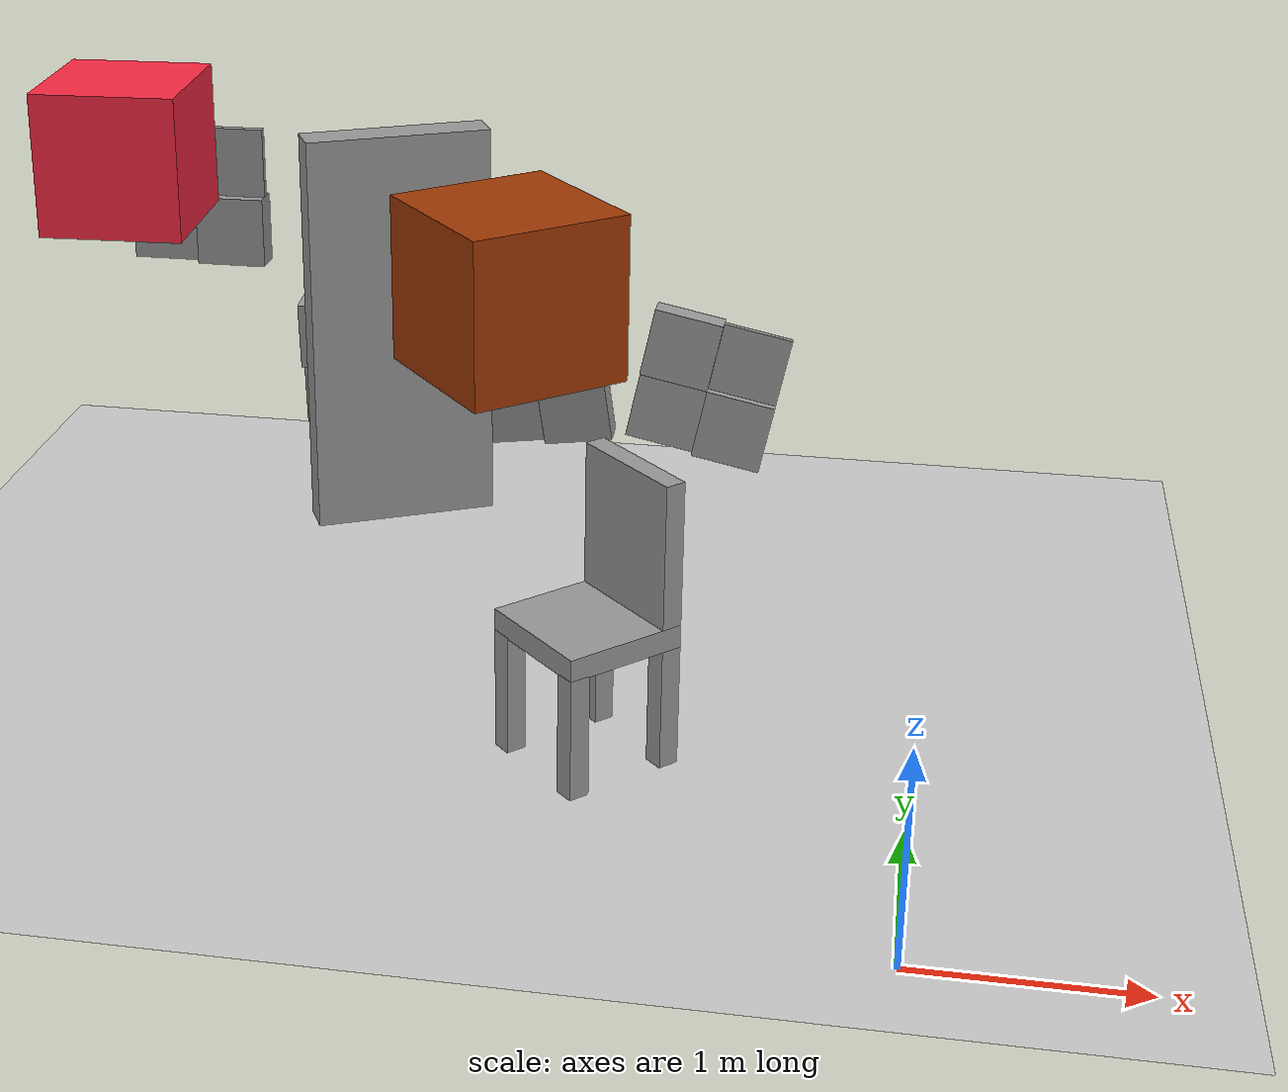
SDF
<sdf version="1.7">
 <world name="default">
  <model name="dyn_box">
   <pose>-4.46961 4.02531 2 0 0 -1.5217</pose>
   <static>1</static>
   <allow_auto_disable>0</allow_auto_disable>
   <link name="link">
    <collision name="collision">
     <geometry><box><size>0.8 0.8 0.8</size></box></geometry>
     <max_contacts>20</max_contacts>
    </collision>
    <visual name="visual">
     <geometry><box><size>0.8 0.8 0.8</size></box></geometry>
     <material>
      <ambient>0.984314 0.160784 0.262745 1</ambient>
      <diffuse>0.984314 0.160784 0.262745 1</diffuse>
     </material>
    </visual>
   </link>
  </model>
  <model name="dyn_box_6">
   <pose>-1.95271 2.10786 2 0 -0 2.26778</pose>
   <static>1</static>
   <allow_auto_disable>0</allow_auto_disable>
   <link name="link">
    <collision name="collision">
     <geometry><box><size>0.8 0.8 0.8</size></box></geometry>
     <max_contacts>20</max_contacts>
    </collision>
    <visual name="visual">
     <geometry><box><size>0.8 0.8 0.8</size></box></geometry>
     <material>
      <ambient>0.631373 0.223529 0.0196078 1</ambient>
      <diffuse>0.631373 0.223529 0.0196078 1</diffuse>
     </material>
    </visual>
   </link>
  </model>
  <model name="ground_plane">
   <static>1</static>
   <link name="link">
    <collision name="collision">
     <geometry><plane><normal>0 0 1</normal><size>100 100</size></plane></geometry>
     <surface>
      <contact><collide_bitmask>65535</collide_bitmask></contact>
      <friction><ode><mu>100</mu><mu2>50</mu2></ode></friction>
     </surface>
    </collision>
    <visual name="visual">
     <cast_shadows>0</cast_shadows>
     <geometry><plane><normal>0 0 1</normal><size>100 100</size></plane></geometry>
     <material>
      <script><uri>file://media/materials/scripts/gazebo.material</uri><name>Gazebo/Grey</name></script>
     </material>
    </visual>
   </link>
  </model>
  <model name="wall_slate_12">
   <static>1</static>
   <link name="link_0">
    <inertial><mass>1</mass></inertial>
    <gravity>0</gravity>
    <visual name="visual">
     <pose>0 0.2 0.2 0 -0 0</pose>
     <geometry><box><size>0.16 0.4 0.4</size></box></geometry>
     <material>
      <lighting>1</lighting>
      <script><uri>file://media/materials/scripts/gazebo.material</uri><name>Gazebo/Grey</name></script>
      <shader type="pixel"><normal_map>__default__</normal_map></shader>
      <ambient>0.3 0.3 0.3 1</ambient>
      <diffuse>0.7 0.7 0.7 1</diffuse>
      <specular>0.01 0.01 0.01 1</specular>
      <emissive>0 0 0 1</emissive>
     </material>
    </visual>
    <visual name="ModelPreview_0::link_0::visual_1">
     <pose>0 0.2 -0.2 0 -0 0</pose>
     <geometry><box><size>0.04 0.4 0.4</size></box></geometry>
     <material>
      <lighting>1</lighting>
      <script><uri>file://media/materials/scripts/gazebo.material</uri><name>Gazebo/Grey</name></script>
      <shader type="pixel"><normal_map>__default__</normal_map></shader>
      <ambient>0.3 0.3 0.3 1</ambient>
      <diffuse>0.7 0.7 0.7 1</diffuse>
      <specular>0.01 0.01 0.01 1</specular>
      <emissive>0 0 0 1</emissive>
     </material>
    </visual>
    <visual name="ModelPreview_0::link_0::visual_2">
     <pose>0 -0.2 0.2 0 -0 0</pose>
     <geometry><box><size>0.04 0.4 0.4</size></box></geometry>
     <material>
      <lighting>1</lighting>
      <script><uri>file://media/materials/scripts/gazebo.material</uri><name>Gazebo/Grey</name></script>
      <shader type="pixel"><normal_map>__default__</normal_map></shader>
      <ambient>0.3 0.3 0.3 1</ambient>
      <diffuse>0.7 0.7 0.7 1</diffuse>
      <specular>0.01 0.01 0.01 1</specular>
      <emissive>0 0 0 1</emissive>
     </material>
    </visual>
    <visual name="ModelPreview_0::link_0::visual_3">
     <pose>0 -0.2 -0.2 0 -0 0</pose>
     <geometry><box><size>0.16 0.4 0.4</size></box></geometry>
     <material>
      <lighting>1</lighting>
      <script><uri>file://media/materials/scripts/gazebo.material</uri><name>Gazebo/Grey</name></script>
      <shader type="pixel"><normal_map>__default__</normal_map></shader>
      <ambient>0.3 0.3 0.3 1</ambient>
      <diffuse>0.7 0.7 0.7 1</diffuse>
      <specular>0.01 0.01 0.01 1</specular>
      <emissive>0 0 0 1</emissive>
     </material>
    </visual>
    <collision name="collision_2">
     <pose>0 -0.2 0.2 0 -0 0</pose>
     <geometry><box><size>0.04 0.4 0.4</size></box></geometry>
     <surface>
      <friction>
       <ode><mu>1</mu><mu2>1</mu2><fdir1>0 0 0</fdir1><slip1>0</slip1><slip2>0</slip2></ode>
       <torsional>
        <coefficient>1</coefficient>
        <patch_radius>0</patch_radius>
        <surface_radius>0</surface_radius>
        <use_patch_radius>1</use_patch_radius>
        <ode><slip>0</slip></ode>
       </torsional>
      </friction>
      <bounce><restitution_coefficient>0</restitution_coefficient><threshold>1e+06</threshold></bounce>
      <contact>
       <collide_without_contact>0</collide_without_contact>
       <collide_without_contact_bitmask>1</collide_without_contact_bitmask>
       <collide_bitmask>1</collide_bitmask>
       <ode>
        <soft_cfm>0</soft_cfm>
        <soft_erp>0.2</soft_erp>
        <kp>1e+13</kp>
        <kd>1</kd>
        <max_vel>0.01</max_vel>
        <min_depth>0</min_depth>
       </ode>
       <bullet>
        <split_impulse>1</split_impulse>
        <split_impulse_penetration_threshold>-0.01</split_impulse_penetration_threshold>
        <soft_cfm>0</soft_cfm>
        <soft_erp>0.2</soft_erp>
        <kp>1e+13</kp>
        <kd>1</kd>
       </bullet>
      </contact>
     </surface>
    </collision>
    <collision name="collision_1">
     <pose>0 0.2 -0.2 0 -0 0</pose>
     <geometry><box><size>0.04 0.4 0.4</size></box></geometry>
     <surface>
      <friction>
       <ode><mu>1</mu><mu2>1</mu2><fdir1>0 0 0</fdir1><slip1>0</slip1><slip2>0</slip2></ode>
       <torsional>
        <coefficient>1</coefficient>
        <patch_radius>0</patch_radius>
        <surface_radius>0</surface_radius>
        <use_patch_radius>1</use_patch_radius>
        <ode><slip>0</slip></ode>
       </torsional>
      </friction>
      <bounce><restitution_coefficient>0</restitution_coefficient><threshold>1e+06</threshold></bounce>
      <contact>
       <collide_without_contact>0</collide_without_contact>
       <collide_without_contact_bitmask>1</collide_without_contact_bitmask>
       <collide_bitmask>1</collide_bitmask>
       <ode>
        <soft_cfm>0</soft_cfm>
        <soft_erp>0.2</soft_erp>
        <kp>1e+13</kp>
        <kd>1</kd>
        <max_vel>0.01</max_vel>
        <min_depth>0</min_depth>
       </ode>
       <bullet>
        <split_impulse>1</split_impulse>
        <split_impulse_penetration_threshold>-0.01</split_impulse_penetration_threshold>
        <soft_cfm>0</soft_cfm>
        <soft_erp>0.2</soft_erp>
        <kp>1e+13</kp>
        <kd>1</kd>
       </bullet>
      </contact>
     </surface>
    </collision>
    <collision name="collision_4">
     <pose>0 0.2 0.2 0 -0 0</pose>
     <geometry><box><size>0.16 0.4 0.4</size></box></geometry>
     <surface>
      <friction>
       <ode><mu>1</mu><mu2>1</mu2><fdir1>0 0 0</fdir1><slip1>0</slip1><slip2>0</slip2></ode>
       <torsional>
        <coefficient>1</coefficient>
        <patch_radius>0</patch_radius>
        <surface_radius>0</surface_radius>
        <use_patch_radius>1</use_patch_radius>
        <ode><slip>0</slip></ode>
       </torsional>
      </friction>
      <bounce><restitution_coefficient>0</restitution_coefficient><threshold>1e+06</threshold></bounce>
      <contact>
       <collide_without_contact>0</collide_without_contact>
       <collide_without_contact_bitmask>1</collide_without_contact_bitmask>
       <collide_bitmask>1</collide_bitmask>
       <ode>
        <soft_cfm>0</soft_cfm>
        <soft_erp>0.2</soft_erp>
        <kp>1e+13</kp>
        <kd>1</kd>
        <max_vel>0.01</max_vel>
        <min_depth>0</min_depth>
       </ode>
       <bullet>
        <split_impulse>1</split_impulse>
        <split_impulse_penetration_threshold>-0.01</split_impulse_penetration_threshold>
        <soft_cfm>0</soft_cfm>
        <soft_erp>0.2</soft_erp>
        <kp>1e+13</kp>
        <kd>1</kd>
       </bullet>
      </contact>
     </surface>
    </collision>
    <collision name="collision_3">
     <pose>0 -0.2 -0.2 0 -0 0</pose>
     <geometry><box><size>0.16 0.4 0.4</size></box></geometry>
     <surface>
      <friction>
       <ode><mu>1</mu><mu2>1</mu2><fdir1>0 0 0</fdir1><slip1>0</slip1><slip2>0</slip2></ode>
       <torsional>
        <coefficient>1</coefficient>
        <patch_radius>0</patch_radius>
        <surface_radius>0</surface_radius>
        <use_patch_radius>1</use_patch_radius>
        <ode><slip>0</slip></ode>
       </torsional>
      </friction>
      <bounce><restitution_coefficient>0</restitution_coefficient><threshold>1e+06</threshold></bounce>
      <contact>
       <collide_without_contact>0</collide_without_contact>
       <collide_without_contact_bitmask>1</collide_without_contact_bitmask>
       <collide_bitmask>1</collide_bitmask>
       <ode>
        <soft_cfm>0</soft_cfm>
        <soft_erp>0.2</soft_erp>
        <kp>1e+13</kp>
        <kd>1</kd>
        <max_vel>0.01</max_vel>
        <min_depth>0</min_depth>
       </ode>
       <bullet>
        <split_impulse>1</split_impulse>
        <split_impulse_penetration_threshold>-0.01</split_impulse_penetration_threshold>
        <soft_cfm>0</soft_cfm>
        <soft_erp>0.2</soft_erp>
        <kp>1e+13</kp>
        <kd>1</kd>
       </bullet>
      </contact>
     </surface>
    </collision>
   </link>
   <pose>-4.24649 4.56618 1.6 0 -0 1.5757</pose>
  </model>
  <model name="wall_slate_58">
   <static>1</static>
   <link name="link_0">
    <inertial><mass>1</mass></inertial>
    <gravity>0</gravity>
    <visual name="visual">
     <pose>0 0.2 0.2 0 -0 0</pose>
     <geometry><box><size>0.16 0.4 0.4</size></box></geometry>
     <material>
      <lighting>1</lighting>
      <script><uri>file://media/materials/scripts/gazebo.material</uri><name>Gazebo/Grey</name></script>
      <shader type="pixel"><normal_map>__default__</normal_map></shader>
      <ambient>0.3 0.3 0.3 1</ambient>
      <diffuse>0.7 0.7 0.7 1</diffuse>
      <specular>0.01 0.01 0.01 1</specular>
      <emissive>0 0 0 1</emissive>
     </material>
    </visual>
    <visual name="ModelPreview_0::link_0::visual_1">
     <pose>0 0.2 -0.2 0 -0 0</pose>
     <geometry><box><size>0.04 0.4 0.4</size></box></geometry>
     <material>
      <lighting>1</lighting>
      <script><uri>file://media/materials/scripts/gazebo.material</uri><name>Gazebo/Grey</name></script>
      <shader type="pixel"><normal_map>__default__</normal_map></shader>
      <ambient>0.3 0.3 0.3 1</ambient>
      <diffuse>0.7 0.7 0.7 1</diffuse>
      <specular>0.01 0.01 0.01 1</specular>
      <emissive>0 0 0 1</emissive>
     </material>
    </visual>
    <visual name="ModelPreview_0::link_0::visual_2">
     <pose>0 -0.2 0.2 0 -0 0</pose>
     <geometry><box><size>0.04 0.4 0.4</size></box></geometry>
     <material>
      <lighting>1</lighting>
      <script><uri>file://media/materials/scripts/gazebo.material</uri><name>Gazebo/Grey</name></script>
      <shader type="pixel"><normal_map>__default__</normal_map></shader>
      <ambient>0.3 0.3 0.3 1</ambient>
      <diffuse>0.7 0.7 0.7 1</diffuse>
      <specular>0.01 0.01 0.01 1</specular>
      <emissive>0 0 0 1</emissive>
     </material>
    </visual>
    <visual name="ModelPreview_0::link_0::visual_3">
     <pose>0 -0.2 -0.2 0 -0 0</pose>
     <geometry><box><size>0.16 0.4 0.4</size></box></geometry>
     <material>
      <lighting>1</lighting>
      <script><uri>file://media/materials/scripts/gazebo.material</uri><name>Gazebo/Grey</name></script>
      <shader type="pixel"><normal_map>__default__</normal_map></shader>
      <ambient>0.3 0.3 0.3 1</ambient>
      <diffuse>0.7 0.7 0.7 1</diffuse>
      <specular>0.01 0.01 0.01 1</specular>
      <emissive>0 0 0 1</emissive>
     </material>
    </visual>
    <collision name="collision_2">
     <pose>0 -0.2 0.2 0 -0 0</pose>
     <geometry><box><size>0.04 0.4 0.4</size></box></geometry>
     <surface>
      <friction>
       <ode><mu>1</mu><mu2>1</mu2><fdir1>0 0 0</fdir1><slip1>0</slip1><slip2>0</slip2></ode>
       <torsional>
        <coefficient>1</coefficient>
        <patch_radius>0</patch_radius>
        <surface_radius>0</surface_radius>
        <use_patch_radius>1</use_patch_radius>
        <ode><slip>0</slip></ode>
       </torsional>
      </friction>
      <bounce><restitution_coefficient>0</restitution_coefficient><threshold>1e+06</threshold></bounce>
      <contact>
       <collide_without_contact>0</collide_without_contact>
       <collide_without_contact_bitmask>1</collide_without_contact_bitmask>
       <collide_bitmask>1</collide_bitmask>
       <ode>
        <soft_cfm>0</soft_cfm>
        <soft_erp>0.2</soft_erp>
        <kp>1e+13</kp>
        <kd>1</kd>
        <max_vel>0.01</max_vel>
        <min_depth>0</min_depth>
       </ode>
       <bullet>
        <split_impulse>1</split_impulse>
        <split_impulse_penetration_threshold>-0.01</split_impulse_penetration_threshold>
        <soft_cfm>0</soft_cfm>
        <soft_erp>0.2</soft_erp>
        <kp>1e+13</kp>
        <kd>1</kd>
       </bullet>
      </contact>
     </surface>
    </collision>
    <collision name="collision_1">
     <pose>0 0.2 -0.2 0 -0 0</pose>
     <geometry><box><size>0.04 0.4 0.4</size></box></geometry>
     <surface>
      <friction>
       <ode><mu>1</mu><mu2>1</mu2><fdir1>0 0 0</fdir1><slip1>0</slip1><slip2>0</slip2></ode>
       <torsional>
        <coefficient>1</coefficient>
        <patch_radius>0</patch_radius>
        <surface_radius>0</surface_radius>
        <use_patch_radius>1</use_patch_radius>
        <ode><slip>0</slip></ode>
       </torsional>
      </friction>
      <bounce><restitution_coefficient>0</restitution_coefficient><threshold>1e+06</threshold></bounce>
      <contact>
       <collide_without_contact>0</collide_without_contact>
       <collide_without_contact_bitmask>1</collide_without_contact_bitmask>
       <collide_bitmask>1</collide_bitmask>
       <ode>
        <soft_cfm>0</soft_cfm>
        <soft_erp>0.2</soft_erp>
        <kp>1e+13</kp>
        <kd>1</kd>
        <max_vel>0.01</max_vel>
        <min_depth>0</min_depth>
       </ode>
       <bullet>
        <split_impulse>1</split_impulse>
        <split_impulse_penetration_threshold>-0.01</split_impulse_penetration_threshold>
        <soft_cfm>0</soft_cfm>
        <soft_erp>0.2</soft_erp>
        <kp>1e+13</kp>
        <kd>1</kd>
       </bullet>
      </contact>
     </surface>
    </collision>
    <collision name="collision_4">
     <pose>0 0.2 0.2 0 -0 0</pose>
     <geometry><box><size>0.16 0.4 0.4</size></box></geometry>
     <surface>
      <friction>
       <ode><mu>1</mu><mu2>1</mu2><fdir1>0 0 0</fdir1><slip1>0</slip1><slip2>0</slip2></ode>
       <torsional>
        <coefficient>1</coefficient>
        <patch_radius>0</patch_radius>
        <surface_radius>0</surface_radius>
        <use_patch_radius>1</use_patch_radius>
        <ode><slip>0</slip></ode>
       </torsional>
      </friction>
      <bounce><restitution_coefficient>0</restitution_coefficient><threshold>1e+06</threshold></bounce>
      <contact>
       <collide_without_contact>0</collide_without_contact>
       <collide_without_contact_bitmask>1</collide_without_contact_bitmask>
       <collide_bitmask>1</collide_bitmask>
       <ode>
        <soft_cfm>0</soft_cfm>
        <soft_erp>0.2</soft_erp>
        <kp>1e+13</kp>
        <kd>1</kd>
        <max_vel>0.01</max_vel>
        <min_depth>0</min_depth>
       </ode>
       <bullet>
        <split_impulse>1</split_impulse>
        <split_impulse_penetration_threshold>-0.01</split_impulse_penetration_threshold>
        <soft_cfm>0</soft_cfm>
        <soft_erp>0.2</soft_erp>
        <kp>1e+13</kp>
        <kd>1</kd>
       </bullet>
      </contact>
     </surface>
    </collision>
    <collision name="collision_3">
     <pose>0 -0.2 -0.2 0 -0 0</pose>
     <geometry><box><size>0.16 0.4 0.4</size></box></geometry>
     <surface>
      <friction>
       <ode><mu>1</mu><mu2>1</mu2><fdir1>0 0 0</fdir1><slip1>0</slip1><slip2>0</slip2></ode>
       <torsional>
        <coefficient>1</coefficient>
        <patch_radius>0</patch_radius>
        <surface_radius>0</surface_radius>
        <use_patch_radius>1</use_patch_radius>
        <ode><slip>0</slip></ode>
       </torsional>
      </friction>
      <bounce><restitution_coefficient>0</restitution_coefficient><threshold>1e+06</threshold></bounce>
      <contact>
       <collide_without_contact>0</collide_without_contact>
       <collide_without_contact_bitmask>1</collide_without_contact_bitmask>
       <collide_bitmask>1</collide_bitmask>
       <ode>
        <soft_cfm>0</soft_cfm>
        <soft_erp>0.2</soft_erp>
        <kp>1e+13</kp>
        <kd>1</kd>
        <max_vel>0.01</max_vel>
        <min_depth>0</min_depth>
       </ode>
       <bullet>
        <split_impulse>1</split_impulse>
        <split_impulse_penetration_threshold>-0.01</split_impulse_penetration_threshold>
        <soft_cfm>0</soft_cfm>
        <soft_erp>0.2</soft_erp>
        <kp>1e+13</kp>
        <kd>1</kd>
       </bullet>
      </contact>
     </surface>
    </collision>
   </link>
   <pose>-3.24649 4.56618 0.6 -0 -0.1 1.5757</pose>
  </model>
  <model name="wall_slate_60">
   <static>1</static>
   <link name="link_0">
    <inertial><mass>1</mass></inertial>
    <gravity>0</gravity>
    <visual name="visual">
     <pose>0 0.2 0.2 0 -0 0</pose>
     <geometry><box><size>0.16 0.4 0.4</size></box></geometry>
     <material>
      <lighting>1</lighting>
      <script><uri>file://media/materials/scripts/gazebo.material</uri><name>Gazebo/Grey</name></script>
      <shader type="pixel"><normal_map>__default__</normal_map></shader>
      <ambient>0.3 0.3 0.3 1</ambient>
      <diffuse>0.7 0.7 0.7 1</diffuse>
      <specular>0.01 0.01 0.01 1</specular>
      <emissive>0 0 0 1</emissive>
     </material>
    </visual>
    <visual name="ModelPreview_0::link_0::visual_1">
     <pose>0 0.2 -0.2 0 -0 0</pose>
     <geometry><box><size>0.04 0.4 0.4</size></box></geometry>
     <material>
      <lighting>1</lighting>
      <script><uri>file://media/materials/scripts/gazebo.material</uri><name>Gazebo/Grey</name></script>
      <shader type="pixel"><normal_map>__default__</normal_map></shader>
      <ambient>0.3 0.3 0.3 1</ambient>
      <diffuse>0.7 0.7 0.7 1</diffuse>
      <specular>0.01 0.01 0.01 1</specular>
      <emissive>0 0 0 1</emissive>
     </material>
    </visual>
    <visual name="ModelPreview_0::link_0::visual_2">
     <pose>0 -0.2 0.2 0 -0 0</pose>
     <geometry><box><size>0.04 0.4 0.4</size></box></geometry>
     <material>
      <lighting>1</lighting>
      <script><uri>file://media/materials/scripts/gazebo.material</uri><name>Gazebo/Grey</name></script>
      <shader type="pixel"><normal_map>__default__</normal_map></shader>
      <ambient>0.3 0.3 0.3 1</ambient>
      <diffuse>0.7 0.7 0.7 1</diffuse>
      <specular>0.01 0.01 0.01 1</specular>
      <emissive>0 0 0 1</emissive>
     </material>
    </visual>
    <visual name="ModelPreview_0::link_0::visual_3">
     <pose>0 -0.2 -0.2 0 -0 0</pose>
     <geometry><box><size>0.16 0.4 0.4</size></box></geometry>
     <material>
      <lighting>1</lighting>
      <script><uri>file://media/materials/scripts/gazebo.material</uri><name>Gazebo/Grey</name></script>
      <shader type="pixel"><normal_map>__default__</normal_map></shader>
      <ambient>0.3 0.3 0.3 1</ambient>
      <diffuse>0.7 0.7 0.7 1</diffuse>
      <specular>0.01 0.01 0.01 1</specular>
      <emissive>0 0 0 1</emissive>
     </material>
    </visual>
    <collision name="collision_2">
     <pose>0 -0.2 0.2 0 -0 0</pose>
     <geometry><box><size>0.04 0.4 0.4</size></box></geometry>
     <surface>
      <friction>
       <ode><mu>1</mu><mu2>1</mu2><fdir1>0 0 0</fdir1><slip1>0</slip1><slip2>0</slip2></ode>
       <torsional>
        <coefficient>1</coefficient>
        <patch_radius>0</patch_radius>
        <surface_radius>0</surface_radius>
        <use_patch_radius>1</use_patch_radius>
        <ode><slip>0</slip></ode>
       </torsional>
      </friction>
      <bounce><restitution_coefficient>0</restitution_coefficient><threshold>1e+06</threshold></bounce>
      <contact>
       <collide_without_contact>0</collide_without_contact>
       <collide_without_contact_bitmask>1</collide_without_contact_bitmask>
       <collide_bitmask>1</collide_bitmask>
       <ode>
        <soft_cfm>0</soft_cfm>
        <soft_erp>0.2</soft_erp>
        <kp>1e+13</kp>
        <kd>1</kd>
        <max_vel>0.01</max_vel>
        <min_depth>0</min_depth>
       </ode>
       <bullet>
        <split_impulse>1</split_impulse>
        <split_impulse_penetration_threshold>-0.01</split_impulse_penetration_threshold>
        <soft_cfm>0</soft_cfm>
        <soft_erp>0.2</soft_erp>
        <kp>1e+13</kp>
        <kd>1</kd>
       </bullet>
      </contact>
     </surface>
    </collision>
    <collision name="collision_1">
     <pose>0 0.2 -0.2 0 -0 0</pose>
     <geometry><box><size>0.04 0.4 0.4</size></box></geometry>
     <surface>
      <friction>
       <ode><mu>1</mu><mu2>1</mu2><fdir1>0 0 0</fdir1><slip1>0</slip1><slip2>0</slip2></ode>
       <torsional>
        <coefficient>1</coefficient>
        <patch_radius>0</patch_radius>
        <surface_radius>0</surface_radius>
        <use_patch_radius>1</use_patch_radius>
        <ode><slip>0</slip></ode>
       </torsional>
      </friction>
      <bounce><restitution_coefficient>0</restitution_coefficient><threshold>1e+06</threshold></bounce>
      <contact>
       <collide_without_contact>0</collide_without_contact>
       <collide_without_contact_bitmask>1</collide_without_contact_bitmask>
       <collide_bitmask>1</collide_bitmask>
       <ode>
        <soft_cfm>0</soft_cfm>
        <soft_erp>0.2</soft_erp>
        <kp>1e+13</kp>
        <kd>1</kd>
        <max_vel>0.01</max_vel>
        <min_depth>0</min_depth>
       </ode>
       <bullet>
        <split_impulse>1</split_impulse>
        <split_impulse_penetration_threshold>-0.01</split_impulse_penetration_threshold>
        <soft_cfm>0</soft_cfm>
        <soft_erp>0.2</soft_erp>
        <kp>1e+13</kp>
        <kd>1</kd>
       </bullet>
      </contact>
     </surface>
    </collision>
    <collision name="collision_4">
     <pose>0 0.2 0.2 0 -0 0</pose>
     <geometry><box><size>0.16 0.4 0.4</size></box></geometry>
     <surface>
      <friction>
       <ode><mu>1</mu><mu2>1</mu2><fdir1>0 0 0</fdir1><slip1>0</slip1><slip2>0</slip2></ode>
       <torsional>
        <coefficient>1</coefficient>
        <patch_radius>0</patch_radius>
        <surface_radius>0</surface_radius>
        <use_patch_radius>1</use_patch_radius>
        <ode><slip>0</slip></ode>
       </torsional>
      </friction>
      <bounce><restitution_coefficient>0</restitution_coefficient><threshold>1e+06</threshold></bounce>
      <contact>
       <collide_without_contact>0</collide_without_contact>
       <collide_without_contact_bitmask>1</collide_without_contact_bitmask>
       <collide_bitmask>1</collide_bitmask>
       <ode>
        <soft_cfm>0</soft_cfm>
        <soft_erp>0.2</soft_erp>
        <kp>1e+13</kp>
        <kd>1</kd>
        <max_vel>0.01</max_vel>
        <min_depth>0</min_depth>
       </ode>
       <bullet>
        <split_impulse>1</split_impulse>
        <split_impulse_penetration_threshold>-0.01</split_impulse_penetration_threshold>
        <soft_cfm>0</soft_cfm>
        <soft_erp>0.2</soft_erp>
        <kp>1e+13</kp>
        <kd>1</kd>
       </bullet>
      </contact>
     </surface>
    </collision>
    <collision name="collision_3">
     <pose>0 -0.2 -0.2 0 -0 0</pose>
     <geometry><box><size>0.16 0.4 0.4</size></box></geometry>
     <surface>
      <friction>
       <ode><mu>1</mu><mu2>1</mu2><fdir1>0 0 0</fdir1><slip1>0</slip1><slip2>0</slip2></ode>
       <torsional>
        <coefficient>1</coefficient>
        <patch_radius>0</patch_radius>
        <surface_radius>0</surface_radius>
        <use_patch_radius>1</use_patch_radius>
        <ode><slip>0</slip></ode>
       </torsional>
      </friction>
      <bounce><restitution_coefficient>0</restitution_coefficient><threshold>1e+06</threshold></bounce>
      <contact>
       <collide_without_contact>0</collide_without_contact>
       <collide_without_contact_bitmask>1</collide_without_contact_bitmask>
       <collide_bitmask>1</collide_bitmask>
       <ode>
        <soft_cfm>0</soft_cfm>
        <soft_erp>0.2</soft_erp>
        <kp>1e+13</kp>
        <kd>1</kd>
        <max_vel>0.01</max_vel>
        <min_depth>0</min_depth>
       </ode>
       <bullet>
        <split_impulse>1</split_impulse>
        <split_impulse_penetration_threshold>-0.01</split_impulse_penetration_threshold>
        <soft_cfm>0</soft_cfm>
        <soft_erp>0.2</soft_erp>
        <kp>1e+13</kp>
        <kd>1</kd>
       </bullet>
      </contact>
     </surface>
    </collision>
   </link>
   <pose>-2.24649 4.56618 0.6 -0.14 -0.06 1.5757</pose>
  </model>
  <model name="wall_slate_82">
   <static>1</static>
   <link name="link_0">
    <inertial><mass>1</mass></inertial>
    <gravity>0</gravity>
    <visual name="visual">
     <pose>0 0.2 0.2 0 -0 0</pose>
     <geometry><box><size>0.16 0.4 0.4</size></box></geometry>
     <material>
      <lighting>1</lighting>
      <script><uri>file://media/materials/scripts/gazebo.material</uri><name>Gazebo/Grey</name></script>
      <shader type="pixel"><normal_map>__default__</normal_map></shader>
      <ambient>0.3 0.3 0.3 1</ambient>
      <diffuse>0.7 0.7 0.7 1</diffuse>
      <specular>0.01 0.01 0.01 1</specular>
      <emissive>0 0 0 1</emissive>
     </material>
    </visual>
    <visual name="ModelPreview_0::link_0::visual_1">
     <pose>0 0.2 -0.2 0 -0 0</pose>
     <geometry><box><size>0.04 0.4 0.4</size></box></geometry>
     <material>
      <lighting>1</lighting>
      <script><uri>file://media/materials/scripts/gazebo.material</uri><name>Gazebo/Grey</name></script>
      <shader type="pixel"><normal_map>__default__</normal_map></shader>
      <ambient>0.3 0.3 0.3 1</ambient>
      <diffuse>0.7 0.7 0.7 1</diffuse>
      <specular>0.01 0.01 0.01 1</specular>
      <emissive>0 0 0 1</emissive>
     </material>
    </visual>
    <visual name="ModelPreview_0::link_0::visual_2">
     <pose>0 -0.2 0.2 0 -0 0</pose>
     <geometry><box><size>0.04 0.4 0.4</size></box></geometry>
     <material>
      <lighting>1</lighting>
      <script><uri>file://media/materials/scripts/gazebo.material</uri><name>Gazebo/Grey</name></script>
      <shader type="pixel"><normal_map>__default__</normal_map></shader>
      <ambient>0.3 0.3 0.3 1</ambient>
      <diffuse>0.7 0.7 0.7 1</diffuse>
      <specular>0.01 0.01 0.01 1</specular>
      <emissive>0 0 0 1</emissive>
     </material>
    </visual>
    <visual name="ModelPreview_0::link_0::visual_3">
     <pose>0 -0.2 -0.2 0 -0 0</pose>
     <geometry><box><size>0.16 0.4 0.4</size></box></geometry>
     <material>
      <lighting>1</lighting>
      <script><uri>file://media/materials/scripts/gazebo.material</uri><name>Gazebo/Grey</name></script>
      <shader type="pixel"><normal_map>__default__</normal_map></shader>
      <ambient>0.3 0.3 0.3 1</ambient>
      <diffuse>0.7 0.7 0.7 1</diffuse>
      <specular>0.01 0.01 0.01 1</specular>
      <emissive>0 0 0 1</emissive>
     </material>
    </visual>
    <collision name="collision_2">
     <pose>0 -0.2 0.2 0 -0 0</pose>
     <geometry><box><size>0.04 0.4 0.4</size></box></geometry>
     <surface>
      <friction>
       <ode><mu>1</mu><mu2>1</mu2><fdir1>0 0 0</fdir1><slip1>0</slip1><slip2>0</slip2></ode>
       <torsional>
        <coefficient>1</coefficient>
        <patch_radius>0</patch_radius>
        <surface_radius>0</surface_radius>
        <use_patch_radius>1</use_patch_radius>
        <ode><slip>0</slip></ode>
       </torsional>
      </friction>
      <bounce><restitution_coefficient>0</restitution_coefficient><threshold>1e+06</threshold></bounce>
      <contact>
       <collide_without_contact>0</collide_without_contact>
       <collide_without_contact_bitmask>1</collide_without_contact_bitmask>
       <collide_bitmask>1</collide_bitmask>
       <ode>
        <soft_cfm>0</soft_cfm>
        <soft_erp>0.2</soft_erp>
        <kp>1e+13</kp>
        <kd>1</kd>
        <max_vel>0.01</max_vel>
        <min_depth>0</min_depth>
       </ode>
       <bullet>
        <split_impulse>1</split_impulse>
        <split_impulse_penetration_threshold>-0.01</split_impulse_penetration_threshold>
        <soft_cfm>0</soft_cfm>
        <soft_erp>0.2</soft_erp>
        <kp>1e+13</kp>
        <kd>1</kd>
       </bullet>
      </contact>
     </surface>
    </collision>
    <collision name="collision_1">
     <pose>0 0.2 -0.2 0 -0 0</pose>
     <geometry><box><size>0.04 0.4 0.4</size></box></geometry>
     <surface>
      <friction>
       <ode><mu>1</mu><mu2>1</mu2><fdir1>0 0 0</fdir1><slip1>0</slip1><slip2>0</slip2></ode>
       <torsional>
        <coefficient>1</coefficient>
        <patch_radius>0</patch_radius>
        <surface_radius>0</surface_radius>
        <use_patch_radius>1</use_patch_radius>
        <ode><slip>0</slip></ode>
       </torsional>
      </friction>
      <bounce><restitution_coefficient>0</restitution_coefficient><threshold>1e+06</threshold></bounce>
      <contact>
       <collide_without_contact>0</collide_without_contact>
       <collide_without_contact_bitmask>1</collide_without_contact_bitmask>
       <collide_bitmask>1</collide_bitmask>
       <ode>
        <soft_cfm>0</soft_cfm>
        <soft_erp>0.2</soft_erp>
        <kp>1e+13</kp>
        <kd>1</kd>
        <max_vel>0.01</max_vel>
        <min_depth>0</min_depth>
       </ode>
       <bullet>
        <split_impulse>1</split_impulse>
        <split_impulse_penetration_threshold>-0.01</split_impulse_penetration_threshold>
        <soft_cfm>0</soft_cfm>
        <soft_erp>0.2</soft_erp>
        <kp>1e+13</kp>
        <kd>1</kd>
       </bullet>
      </contact>
     </surface>
    </collision>
    <collision name="collision_4">
     <pose>0 0.2 0.2 0 -0 0</pose>
     <geometry><box><size>0.16 0.4 0.4</size></box></geometry>
     <surface>
      <friction>
       <ode><mu>1</mu><mu2>1</mu2><fdir1>0 0 0</fdir1><slip1>0</slip1><slip2>0</slip2></ode>
       <torsional>
        <coefficient>1</coefficient>
        <patch_radius>0</patch_radius>
        <surface_radius>0</surface_radius>
        <use_patch_radius>1</use_patch_radius>
        <ode><slip>0</slip></ode>
       </torsional>
      </friction>
      <bounce><restitution_coefficient>0</restitution_coefficient><threshold>1e+06</threshold></bounce>
      <contact>
       <collide_without_contact>0</collide_without_contact>
       <collide_without_contact_bitmask>1</collide_without_contact_bitmask>
       <collide_bitmask>1</collide_bitmask>
       <ode>
        <soft_cfm>0</soft_cfm>
        <soft_erp>0.2</soft_erp>
        <kp>1e+13</kp>
        <kd>1</kd>
        <max_vel>0.01</max_vel>
        <min_depth>0</min_depth>
       </ode>
       <bullet>
        <split_impulse>1</split_impulse>
        <split_impulse_penetration_threshold>-0.01</split_impulse_penetration_threshold>
        <soft_cfm>0</soft_cfm>
        <soft_erp>0.2</soft_erp>
        <kp>1e+13</kp>
        <kd>1</kd>
       </bullet>
      </contact>
     </surface>
    </collision>
    <collision name="collision_3">
     <pose>0 -0.2 -0.2 0 -0 0</pose>
     <geometry><box><size>0.16 0.4 0.4</size></box></geometry>
     <surface>
      <friction>
       <ode><mu>1</mu><mu2>1</mu2><fdir1>0 0 0</fdir1><slip1>0</slip1><slip2>0</slip2></ode>
       <torsional>
        <coefficient>1</coefficient>
        <patch_radius>0</patch_radius>
        <surface_radius>0</surface_radius>
        <use_patch_radius>1</use_patch_radius>
        <ode><slip>0</slip></ode>
       </torsional>
      </friction>
      <bounce><restitution_coefficient>0</restitution_coefficient><threshold>1e+06</threshold></bounce>
      <contact>
       <collide_without_contact>0</collide_without_contact>
       <collide_without_contact_bitmask>1</collide_without_contact_bitmask>
       <collide_bitmask>1</collide_bitmask>
       <ode>
        <soft_cfm>0</soft_cfm>
        <soft_erp>0.2</soft_erp>
        <kp>1e+13</kp>
        <kd>1</kd>
        <max_vel>0.01</max_vel>
        <min_depth>0</min_depth>
       </ode>
       <bullet>
        <split_impulse>1</split_impulse>
        <split_impulse_penetration_threshold>-0.01</split_impulse_penetration_threshold>
        <soft_cfm>0</soft_cfm>
        <soft_erp>0.2</soft_erp>
        <kp>1e+13</kp>
        <kd>1</kd>
       </bullet>
      </contact>
     </surface>
    </collision>
   </link>
   <pose>-1.24649 4.56618 0.6 0.2 0.06 1.5757</pose>
  </model>
  <model name="large_clutter">
   <link name="link_0">
    <inertial>
     <mass>1</mass>
     <inertia><ixx>1</ixx><ixy>0</ixy><ixz>0</ixz><iyy>1</iyy><iyz>0</iyz><izz>1</izz></inertia>
    </inertial>
    <gravity>0</gravity>
    <visual name="visual">
     <geometry><box><size>0.2 1 2.2</size></box></geometry>
     <material>
      <lighting>1</lighting>
      <script><uri>file://media/materials/scripts/gazebo.material</uri><name>Gazebo/Grey</name></script>
      <shader type="pixel"><normal_map>__default__</normal_map></shader>
      <ambient>0.3 0.3 0.3 1</ambient>
      <diffuse>0.7 0.7 0.7 1</diffuse>
      <specular>0.01 0.01 0.01 1</specular>
      <emissive>0 0 0 1</emissive>
     </material>
    </visual>
    <collision name="collision">
     <geometry><box><size>0.2 1 2.2</size></box></geometry>
     <surface>
      <friction>
       <ode><mu>1</mu><mu2>1</mu2><fdir1>0 0 0</fdir1><slip1>0</slip1><slip2>0</slip2></ode>
       <torsional>
        <coefficient>1</coefficient>
        <patch_radius>0</patch_radius>
        <surface_radius>0</surface_radius>
        <use_patch_radius>1</use_patch_radius>
        <ode><slip>0</slip></ode>
       </torsional>
      </friction>
      <bounce><restitution_coefficient>0</restitution_coefficient><threshold>1e+06</threshold></bounce>
      <contact>
       <collide_without_contact>0</collide_without_contact>
       <collide_without_contact_bitmask>1</collide_without_contact_bitmask>
       <collide_bitmask>1</collide_bitmask>
       <ode>
        <soft_cfm>0</soft_cfm>
        <soft_erp>0.2</soft_erp>
        <kp>1e+13</kp>
        <kd>1</kd>
        <max_vel>0.01</max_vel>
        <min_depth>0</min_depth>
       </ode>
       <bullet>
        <split_impulse>1</split_impulse>
        <split_impulse_penetration_threshold>-0.01</split_impulse_penetration_threshold>
        <soft_cfm>0</soft_cfm>
        <soft_erp>0.2</soft_erp>
        <kp>1e+13</kp>
        <kd>1</kd>
       </bullet>
      </contact>
     </surface>
    </collision>
   </link>
   <static>0</static>
   <pose>-2.89113 3.82723 1.13267 0 0 -1.11403</pose>
  </model>
  <model name="chair">
   <link name="link_0_clone">
    <inertial>
     <mass>1</mass>
     <inertia><ixx>1</ixx><ixy>0</ixy><ixz>0</ixz><iyy>1</iyy><iyz>0</iyz><izz>1</izz></inertia>
    </inertial>
    <pose>-0.041667 -0 0.165833 0 -0 0</pose>
    <gravity>0</gravity>
    <visual name="visual">
     <geometry><box><size>0.6 0.6 0.11</size></box></geometry>
     <material>
      <lighting>1</lighting>
      <script><uri>file://media/materials/scripts/gazebo.material</uri><name>Gazebo/Grey</name></script>
      <shader type="pixel"><normal_map>__default__</normal_map></shader>
      <ambient>0.3 0.3 0.3 1</ambient>
      <diffuse>0.7 0.7 0.7 1</diffuse>
      <specular>0.01 0.01 0.01 1</specular>
      <emissive>0 0 0 1</emissive>
     </material>
    </visual>
    <collision name="collision">
     <geometry><box><size>0.6 0.6 0.1</size></box></geometry>
     <surface>
      <friction>
       <ode><mu>1</mu><mu2>1</mu2><fdir1>0 0 0</fdir1><slip1>0</slip1><slip2>0</slip2></ode>
       <torsional>
        <coefficient>1</coefficient>
        <patch_radius>0</patch_radius>
        <surface_radius>0</surface_radius>
        <use_patch_radius>1</use_patch_radius>
        <ode><slip>0</slip></ode>
       </torsional>
      </friction>
      <bounce><restitution_coefficient>0</restitution_coefficient><threshold>1e+06</threshold></bounce>
      <contact>
       <collide_without_contact>0</collide_without_contact>
       <collide_without_contact_bitmask>1</collide_without_contact_bitmask>
       <collide_bitmask>1</collide_bitmask>
       <ode>
        <soft_cfm>0</soft_cfm>
        <soft_erp>0.2</soft_erp>
        <kp>1e+13</kp>
        <kd>1</kd>
        <max_vel>0.01</max_vel>
        <min_depth>0</min_depth>
       </ode>
       <bullet>
        <split_impulse>1</split_impulse>
        <split_impulse_penetration_threshold>-0.01</split_impulse_penetration_threshold>
        <soft_cfm>0</soft_cfm>
        <soft_erp>0.2</soft_erp>
        <kp>1e+13</kp>
        <kd>1</kd>
       </bullet>
      </contact>
     </surface>
    </collision>
   </link>
   <link name="link_1_clone">
    <inertial>
     <mass>1</mass>
     <inertia>
      <ixx>0.166667</ixx>
      <ixy>0</ixy>
      <ixz>0</ixz>
      <iyy>0.166667</iyy>
      <iyz>0</iyz>
      <izz>0.166667</izz>
     </inertia>
    </inertial>
    <pose>-0.291667 0.25 -0.184167 0 -0 0</pose>
    <visual name="visual">
     <geometry><box><size>0.1 0.1 0.6</size></box></geometry>
     <material>
      <lighting>1</lighting>
      <script><uri>file://media/materials/scripts/gazebo.material</uri><name>Gazebo/Grey</name></script>
      <shader type="pixel"><normal_map>__default__</normal_map></shader>
      <ambient>0.3 0.3 0.3 1</ambient>
      <diffuse>0.7 0.7 0.7 1</diffuse>
      <specular>0.01 0.01 0.01 1</specular>
      <emissive>0 0 0 1</emissive>
     </material>
    </visual>
    <collision name="collision">
     <geometry><box><size>0.1 0.1 0.6</size></box></geometry>
     <surface>
      <friction>
       <ode><mu>1</mu><mu2>1</mu2><fdir1>0 0 0</fdir1><slip1>0</slip1><slip2>0</slip2></ode>
       <torsional>
        <coefficient>1</coefficient>
        <patch_radius>0</patch_radius>
        <surface_radius>0</surface_radius>
        <use_patch_radius>1</use_patch_radius>
        <ode><slip>0</slip></ode>
       </torsional>
      </friction>
      <bounce><restitution_coefficient>0</restitution_coefficient><threshold>1e+06</threshold></bounce>
      <contact>
       <collide_without_contact>0</collide_without_contact>
       <collide_without_contact_bitmask>1</collide_without_contact_bitmask>
       <collide_bitmask>1</collide_bitmask>
       <ode>
        <soft_cfm>0</soft_cfm>
        <soft_erp>0.2</soft_erp>
        <kp>1e+13</kp>
        <kd>1</kd>
        <max_vel>0.01</max_vel>
        <min_depth>0</min_depth>
       </ode>
       <bullet>
        <split_impulse>1</split_impulse>
        <split_impulse_penetration_threshold>-0.01</split_impulse_penetration_threshold>
        <soft_cfm>0</soft_cfm>
        <soft_erp>0.2</soft_erp>
        <kp>1e+13</kp>
        <kd>1</kd>
       </bullet>
      </contact>
     </surface>
    </collision>
   </link>
   <link name="link_1_clone_0">
    <inertial>
     <mass>1</mass>
     <inertia>
      <ixx>0.166667</ixx>
      <ixy>0</ixy>
      <ixz>0</ixz>
      <iyy>0.166667</iyy>
      <iyz>0</iyz>
      <izz>0.166667</izz>
     </inertia>
    </inertial>
    <pose>0.208333 0.25 -0.184167 0 -0 0</pose>
    <visual name="visual">
     <geometry><box><size>0.1 0.1 0.6</size></box></geometry>
     <material>
      <lighting>1</lighting>
      <script><uri>file://media/materials/scripts/gazebo.material</uri><name>Gazebo/Grey</name></script>
      <shader type="pixel"><normal_map>__default__</normal_map></shader>
      <ambient>0.3 0.3 0.3 1</ambient>
      <diffuse>0.7 0.7 0.7 1</diffuse>
      <specular>0.01 0.01 0.01 1</specular>
      <emissive>0 0 0 1</emissive>
     </material>
    </visual>
    <collision name="collision">
     <geometry><box><size>0.1 0.1 0.6</size></box></geometry>
     <surface>
      <friction>
       <ode><mu>1</mu><mu2>1</mu2><fdir1>0 0 0</fdir1><slip1>0</slip1><slip2>0</slip2></ode>
       <torsional>
        <coefficient>1</coefficient>
        <patch_radius>0</patch_radius>
        <surface_radius>0</surface_radius>
        <use_patch_radius>1</use_patch_radius>
        <ode><slip>0</slip></ode>
       </torsional>
      </friction>
      <bounce><restitution_coefficient>0</restitution_coefficient><threshold>1e+06</threshold></bounce>
      <contact>
       <collide_without_contact>0</collide_without_contact>
       <collide_without_contact_bitmask>1</collide_without_contact_bitmask>
       <collide_bitmask>1</collide_bitmask>
       <ode>
        <soft_cfm>0</soft_cfm>
        <soft_erp>0.2</soft_erp>
        <kp>1e+13</kp>
        <kd>1</kd>
        <max_vel>0.01</max_vel>
        <min_depth>0</min_depth>
       </ode>
       <bullet>
        <split_impulse>1</split_impulse>
        <split_impulse_penetration_threshold>-0.01</split_impulse_penetration_threshold>
        <soft_cfm>0</soft_cfm>
        <soft_erp>0.2</soft_erp>
        <kp>1e+13</kp>
        <kd>1</kd>
       </bullet>
      </contact>
     </surface>
    </collision>
   </link>
   <link name="link_1_clone_1">
    <inertial>
     <mass>1</mass>
     <inertia>
      <ixx>0.166667</ixx>
      <ixy>0</ixy>
      <ixz>0</ixz>
      <iyy>0.166667</iyy>
      <iyz>0</iyz>
      <izz>0.166667</izz>
     </inertia>
    </inertial>
    <pose>0.208333 -0.25 -0.184167 0 -0 0</pose>
    <visual name="visual">
     <geometry><box><size>0.1 0.1 0.6</size></box></geometry>
     <material>
      <lighting>1</lighting>
      <script><uri>file://media/materials/scripts/gazebo.material</uri><name>Gazebo/Grey</name></script>
      <shader type="pixel"><normal_map>__default__</normal_map></shader>
      <ambient>0.3 0.3 0.3 1</ambient>
      <diffuse>0.7 0.7 0.7 1</diffuse>
      <specular>0.01 0.01 0.01 1</specular>
      <emissive>0 0 0 1</emissive>
     </material>
    </visual>
    <collision name="collision">
     <geometry><box><size>0.1 0.1 0.6</size></box></geometry>
     <surface>
      <friction>
       <ode><mu>1</mu><mu2>1</mu2><fdir1>0 0 0</fdir1><slip1>0</slip1><slip2>0</slip2></ode>
       <torsional>
        <coefficient>1</coefficient>
        <patch_radius>0</patch_radius>
        <surface_radius>0</surface_radius>
        <use_patch_radius>1</use_patch_radius>
        <ode><slip>0</slip></ode>
       </torsional>
      </friction>
      <bounce><restitution_coefficient>0</restitution_coefficient><threshold>1e+06</threshold></bounce>
      <contact>
       <collide_without_contact>0</collide_without_contact>
       <collide_without_contact_bitmask>1</collide_without_contact_bitmask>
       <collide_bitmask>1</collide_bitmask>
       <ode>
        <soft_cfm>0</soft_cfm>
        <soft_erp>0.2</soft_erp>
        <kp>1e+13</kp>
        <kd>1</kd>
        <max_vel>0.01</max_vel>
        <min_depth>0</min_depth>
       </ode>
       <bullet>
        <split_impulse>1</split_impulse>
        <split_impulse_penetration_threshold>-0.01</split_impulse_penetration_threshold>
        <soft_cfm>0</soft_cfm>
        <soft_erp>0.2</soft_erp>
        <kp>1e+13</kp>
        <kd>1</kd>
       </bullet>
      </contact>
     </surface>
    </collision>
   </link>
   <link name="link_1_clone_clone">
    <inertial>
     <mass>1</mass>
     <inertia>
      <ixx>0.166667</ixx>
      <ixy>0</ixy>
      <ixz>0</ixz>
      <iyy>0.166667</iyy>
      <iyz>0</iyz>
      <izz>0.166667</izz>
     </inertia>
    </inertial>
    <pose>-0.291667 -0.25 -0.184167 0 -0 0</pose>
    <visual name="visual">
     <geometry><box><size>0.1 0.1 0.6</size></box></geometry>
     <material>
      <lighting>1</lighting>
      <script><uri>file://media/materials/scripts/gazebo.material</uri><name>Gazebo/Grey</name></script>
      <shader type="pixel"><normal_map>__default__</normal_map></shader>
      <ambient>0.3 0.3 0.3 1</ambient>
      <diffuse>0.7 0.7 0.7 1</diffuse>
      <specular>0.01 0.01 0.01 1</specular>
      <emissive>0 0 0 1</emissive>
     </material>
    </visual>
    <collision name="collision">
     <geometry><box><size>0.1 0.1 0.6</size></box></geometry>
     <surface>
      <friction>
       <ode><mu>1</mu><mu2>1</mu2><fdir1>0 0 0</fdir1><slip1>0</slip1><slip2>0</slip2></ode>
       <torsional>
        <coefficient>1</coefficient>
        <patch_radius>0</patch_radius>
        <surface_radius>0</surface_radius>
        <use_patch_radius>1</use_patch_radius>
        <ode><slip>0</slip></ode>
       </torsional>
      </friction>
      <bounce><restitution_coefficient>0</restitution_coefficient><threshold>1e+06</threshold></bounce>
      <contact>
       <collide_without_contact>0</collide_without_contact>
       <collide_without_contact_bitmask>1</collide_without_contact_bitmask>
       <collide_bitmask>1</collide_bitmask>
       <ode>
        <soft_cfm>0</soft_cfm>
        <soft_erp>0.2</soft_erp>
        <kp>1e+13</kp>
        <kd>1</kd>
        <max_vel>0.01</max_vel>
        <min_depth>0</min_depth>
       </ode>
       <bullet>
        <split_impulse>1</split_impulse>
        <split_impulse_penetration_threshold>-0.01</split_impulse_penetration_threshold>
        <soft_cfm>0</soft_cfm>
        <soft_erp>0.2</soft_erp>
        <kp>1e+13</kp>
        <kd>1</kd>
       </bullet>
      </contact>
     </surface>
    </collision>
   </link>
   <link name="link_2_clone">
    <inertial>
     <mass>1</mass>
     <inertia>
      <ixx>0.166667</ixx>
      <ixy>0</ixy>
      <ixz>0</ixz>
      <iyy>0.166667</iyy>
      <iyz>0</iyz>
      <izz>0.166667</izz>
     </inertia>
    </inertial>
    <pose>0.208333 -0 0.570833 0 -0 0</pose>
    <visual name="visual">
     <geometry><box><size>0.1 0.6 0.7</size></box></geometry>
     <material>
      <lighting>1</lighting>
      <script><uri>file://media/materials/scripts/gazebo.material</uri><name>Gazebo/Grey</name></script>
      <shader type="pixel"><normal_map>__default__</normal_map></shader>
      <ambient>0.3 0.3 0.3 1</ambient>
      <diffuse>0.7 0.7 0.7 1</diffuse>
      <specular>0.01 0.01 0.01 1</specular>
      <emissive>0 0 0 1</emissive>
     </material>
    </visual>
    <collision name="collision">
     <geometry><box><size>0.1 0.6 0.7</size></box></geometry>
     <surface>
      <friction>
       <ode><mu>1</mu><mu2>1</mu2><fdir1>0 0 0</fdir1><slip1>0</slip1><slip2>0</slip2></ode>
       <torsional>
        <coefficient>1</coefficient>
        <patch_radius>0</patch_radius>
        <surface_radius>0</surface_radius>
        <use_patch_radius>1</use_patch_radius>
        <ode><slip>0</slip></ode>
       </torsional>
      </friction>
      <bounce><restitution_coefficient>0</restitution_coefficient><threshold>1e+06</threshold></bounce>
      <contact>
       <collide_without_contact>0</collide_without_contact>
       <collide_without_contact_bitmask>1</collide_without_contact_bitmask>
       <collide_bitmask>1</collide_bitmask>
       <ode>
        <soft_cfm>0</soft_cfm>
        <soft_erp>0.2</soft_erp>
        <kp>1e+13</kp>
        <kd>1</kd>
        <max_vel>0.01</max_vel>
        <min_depth>0</min_depth>
       </ode>
       <bullet>
        <split_impulse>1</split_impulse>
        <split_impulse_penetration_threshold>-0.01</split_impulse_penetration_threshold>
        <soft_cfm>0</soft_cfm>
        <soft_erp>0.2</soft_erp>
        <kp>1e+13</kp>
        <kd>1</kd>
       </bullet>
      </contact>
     </surface>
    </collision>
   </link>
   <joint name="link_0_clone_JOINT_0" type="fixed">
    <parent>link_0_clone</parent>
    <child>link_1_clone_clone</child>
    <physics><ode><limit><cfm>0</cfm><erp>0.2</erp></limit></ode></physics>
   </joint>
   <joint name="link_0_clone_JOINT_1" type="fixed">
    <parent>link_0_clone</parent>
    <child>link_1_clone</child>
    <physics><ode><limit><cfm>0</cfm><erp>0.2</erp></limit></ode></physics>
   </joint>
   <joint name="link_0_clone_JOINT_2" type="fixed">
    <parent>link_0_clone</parent>
    <child>link_1_clone_1</child>
    <physics><ode><limit><cfm>0</cfm><erp>0.2</erp></limit></ode></physics>
   </joint>
   <joint name="link_0_clone_JOINT_3" type="fixed">
    <parent>link_0_clone</parent>
    <child>link_2_clone</child>
    <physics><ode><limit><cfm>0</cfm><erp>0.2</erp></limit></ode></physics>
   </joint>
   <joint name="link_0_clone_JOINT_4" type="fixed">
    <parent>link_0_clone</parent>
    <child>link_1_clone_0</child>
    <physics><ode><limit><cfm>0</cfm><erp>0.2</erp></limit></ode></physics>
   </joint>
   <static>0</static>
   <pose>-1.43708 1.4436 0.484166 -3e-06 2e-06 0.775135</pose>
  </model>
 </world>
</sdf>
